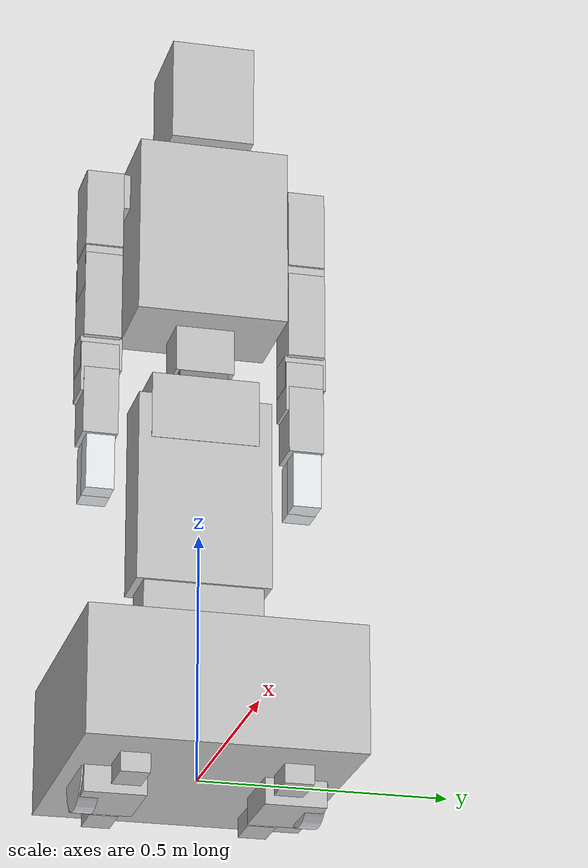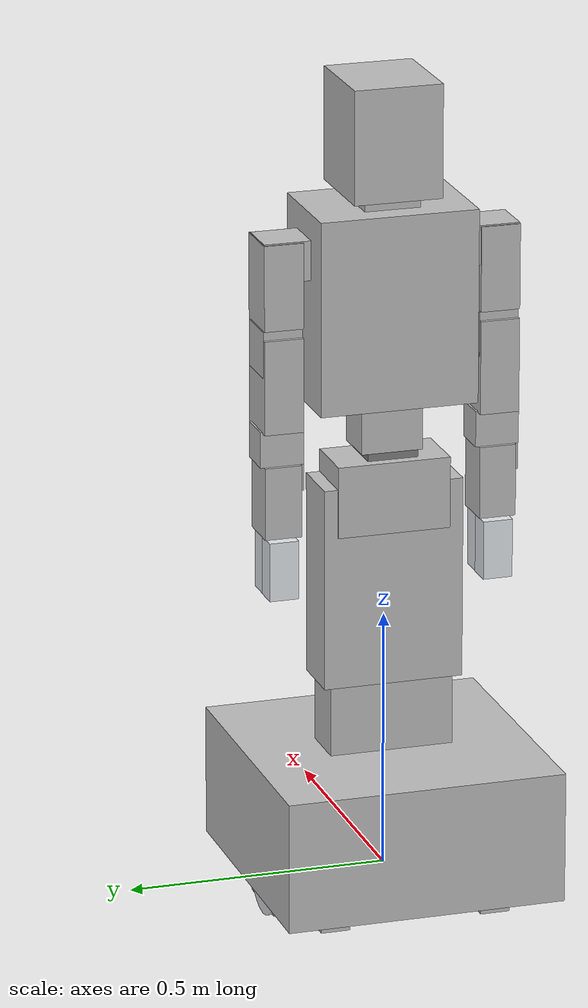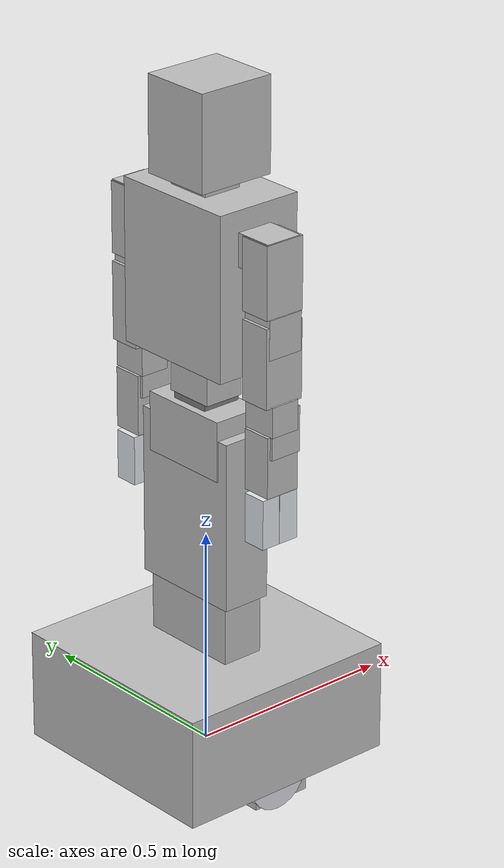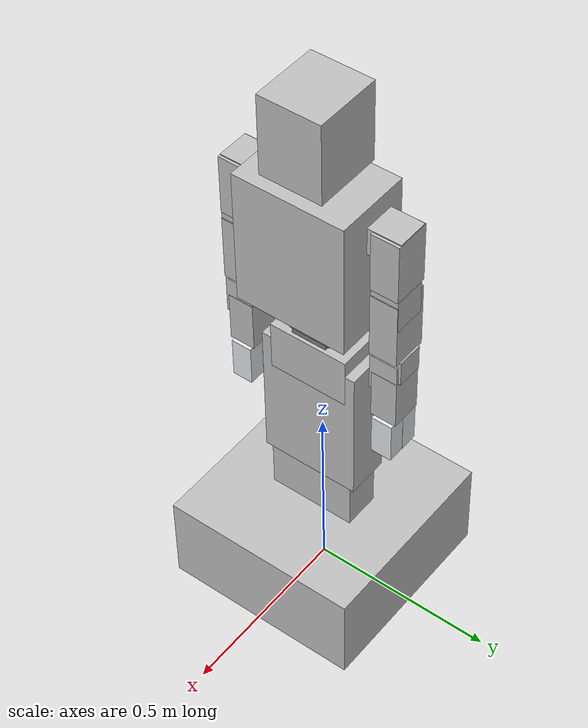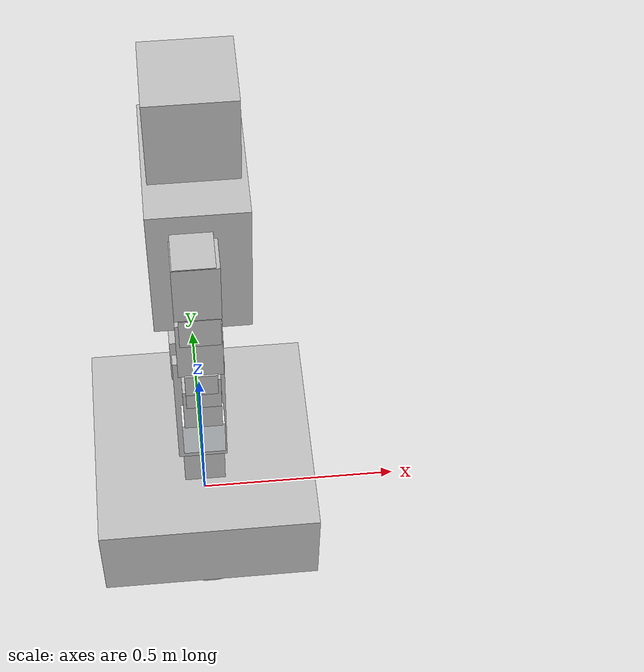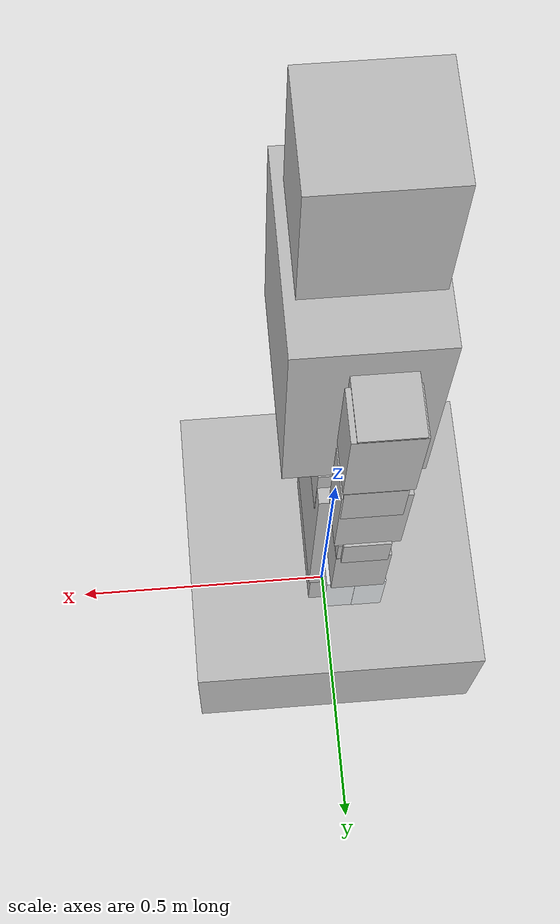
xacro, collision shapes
<?xml version="1.0" encoding="utf-8"?>
<robot xmlns:xacro="http://www.ros.org/wiki/xacro" name="HAD2503-D-DEX1">
  <link
    name="base_link">
    <inertial>
      <origin
        xyz="-0.0431384 0.0004813 0.0725755"
        rpy="0 0 0" />
      <mass
        value="23.9251683" />
      <inertia
        ixx="0.2984863"
        ixy="0.0017842"
        ixz="-0.0483947"
        iyy="0.4224088"
        iyz="0.0004353"
        izz="0.4920508" />
    </inertial>
    <visual>
      <origin
        xyz="0 0 0"
        rpy="0 0 0" />
      <geometry>
        <mesh
          filename="file://$(find gazebo_robot_had2503_demo)/meshes/base_link.STL" />
      </geometry>
      <material
        name="">
        <color
          rgba="0.752941176470588 0.752941176470588 0.752941176470588 1" />
      </material>
    </visual>
    <collision>
      <origin
        xyz="0.000000 0.000000 0.118724"
        rpy="0 0 0" />
      <geometry>
        <box size="0.543727 0.541500 0.255026" />
      </geometry>
    </collision>
  </link>
  <link
    name="front_left_fixed_wheel_link">
    <inertial>
      <origin
        xyz="-0.0046352 0.0000556 -0.0580307"
        rpy="0 0 0" />
      <mass
        value="0.7991271" />
      <inertia
        ixx="0.0011238"
        ixy="0.0000002"
        ixz="-0.0001109"
        iyy="0.0011026"
        iyz="0.0000014"
        izz="0.0005040" />
    </inertial>
    <visual>
      <origin
        xyz="0 0 0"
        rpy="0 0 0" />
      <geometry>
        <mesh
          filename="file://$(find gazebo_robot_had2503_demo)/meshes/front_left_fixed_wheel_link.STL" />
      </geometry>
      <material
        name="">
        <color
          rgba="0.752941176470588 0.752941176470588 0.752941176470588 1" />
      </material>
    </visual>
    <collision>
      <origin
        xyz="-0.009962 0.000000 -0.067460"
        rpy="0 0 0" />
      <geometry>
        <box size="0.085311 0.057000 0.128174" />
      </geometry>
    </collision>
  </link>
  <joint
    name="front_left_fixed_wheel_joint"
    type="fixed">
    <origin
      xyz="0.1475 0.1575 0.0845"
      rpy="0 0 0" />
    <parent
      link="base_link" />
    <child
      link="front_left_fixed_wheel_link" />
    <axis
      xyz="0 0 0" />
  </joint>
  <link
    name="front_right_fixed_wheel_link">
    <inertial>
      <origin
        xyz="-0.0046352 0.0000556 -0.0580307"
        rpy="0 0 0" />
      <mass
        value="0.7991271" />
      <inertia
        ixx="0.0011238"
        ixy="0.0000002"
        ixz="-0.0001109"
        iyy="0.0011026"
        iyz="0.0000014"
        izz="0.0005040" />
    </inertial>
    <visual>
      <origin
        xyz="0 0 0"
        rpy="0 0 0" />
      <geometry>
        <mesh
          filename="file://$(find gazebo_robot_had2503_demo)/meshes/front_right_fixed_wheel_link.STL" />
      </geometry>
      <material
        name="">
        <color
          rgba="0.752941176470588 0.752941176470588 0.752941176470588 1" />
      </material>
    </visual>
    <collision>
      <origin
        xyz="-0.009996 0.000000 -0.067469"
        rpy="0 0 0" />
      <geometry>
        <box size="0.085345 0.057000 0.128191" />
      </geometry>
    </collision>
  </link>
  <joint
    name="front_right_fixed_wheel_joint"
    type="fixed">
    <origin
      xyz="0.147499986661774 -0.15750001248987 0.0845000007000068"
      rpy="0 0 0" />
    <parent
      link="base_link" />
    <child
      link="front_right_fixed_wheel_link" />
    <axis
      xyz="0 0 0" />
  </joint>
  <link
    name="back_left_fixed_wheel_link">
    <inertial>
      <origin
        xyz="-0.0046352 0.0000556 -0.0580307"
        rpy="0 0 0" />
      <mass
        value="0.7991271" />
      <inertia
        ixx="0.0011238"
        ixy="0.0000002"
        ixz="-0.0001109"
        iyy="0.0011026"
        iyz="0.0000014"
        izz="0.0005040" />
    </inertial>
    <visual>
      <origin
        xyz="0 0 0"
        rpy="0 0 0" />
      <geometry>
        <mesh
          filename="file://$(find gazebo_robot_had2503_demo)/meshes/back_left_fixed_wheel_link.STL" />
      </geometry>
      <material
        name="">
        <color
          rgba="0.752941176470588 0.752941176470588 0.752941176470588 1" />
      </material>
    </visual>
    <collision>
      <origin
        xyz="-0.010028 0.000000 -0.067464"
        rpy="0 0 0" />
      <geometry>
        <box size="0.085327 0.057000 0.128182" />
      </geometry>
    </collision>
  </link>
  <joint
    name="back_left_fixed_wheel_joint"
    type="fixed">
    <origin
      xyz="-0.147499986664964 0.157500012489855 0.0845000007000353"
      rpy="0 0 0" />
    <parent
      link="base_link" />
    <child
      link="back_left_fixed_wheel_link" />
    <axis
      xyz="0 0 0" />
  </joint>
  <link
    name="back_right_fixed_wheel_link">
    <inertial>
      <origin
        xyz="-0.0046352 0.0000556 -0.0580307"
        rpy="0 0 0" />
      <mass
        value="0.7991271" />
      <inertia
        ixx="0.0011238"
        ixy="0.0000002"
        ixz="-0.0001109"
        iyy="0.0011026"
        iyz="0.0000014"
        izz="0.0005040" />
    </inertial>
    <visual>
      <origin
        xyz="0 0 0"
        rpy="0 0 0" />
      <geometry>
        <mesh
          filename="file://$(find gazebo_robot_had2503_demo)/meshes/back_right_fixed_wheel_link.STL" />
      </geometry>
      <material
        name="">
        <color
          rgba="0.752941176470588 0.752941176470588 0.752941176470588 1" />
      </material>
    </visual>
    <collision>
      <origin
        xyz="-0.009974 0.000000 -0.067465"
        rpy="0 0 0" />
      <geometry>
        <box size="0.085330 0.057000 0.128184" />
      </geometry>
    </collision>
  </link>
  <joint
    name="back_right_fixed_wheel_joint"
    type="fixed">
    <origin
      xyz="-0.147500013338228 -0.157499987510144 0.0845000007000131"
      rpy="0 0 0" />
    <parent
      link="base_link" />
    <child
      link="back_right_fixed_wheel_link" />
    <axis
      xyz="0 0 0" />
  </joint>
  <link
    name="ankle_pitch_link">
    <inertial>
      <origin
        xyz="0.0001980 0.0006990 0.1853176"
        rpy="0 0 0" />
      <mass
        value="4.1888192" />
      <inertia
        ixx="0.0517553"
        ixy="-0.0000017"
        ixz="0.0000489"
        iyy="0.0237083"
        iyz="0.0002358"
        izz="0.0326906" />
    </inertial>
    <visual>
      <origin
        xyz="0 0 0"
        rpy="0 0 0" />
      <geometry>
        <mesh
          filename="file://$(find gazebo_robot_had2503_demo)/meshes/ankle_pitch_link.STL" />
      </geometry>
      <material
        name="">
        <color
          rgba="0.752941176470588 0.752941176470588 0.752941176470588 1" />
      </material>
    </visual>
    <collision>
      <origin
        xyz="-0.000009 -0.000000 0.113251"
        rpy="0 0 0" />
      <geometry>
        <box size="0.099712 0.240379 0.308274" />
      </geometry>
    </collision>
  </link>
  <joint
    name="ankle_pitch_joint"
    type="revolute">
    <origin
      xyz="0 0 0.2035"
      rpy="0 0 0" />
    <parent
      link="base_link" />
    <child
      link="ankle_pitch_link" />
    <axis
      xyz="0 1 0" />
    <limit
      lower="-0.174"
      upper="2.09"
      effort="300"
      velocity="3.14" />
  </joint>
  <link
    name="knee_pitch_link">
    <inertial>
      <origin
        xyz="0.0020985 -0.0000198 0.1525714"
        rpy="0 0 0" />
      <mass
        value="3.0927357" />
      <inertia
        ixx="0.0617149"
        ixy="-0.0000004"
        ixz="0.0003325"
        iyy="0.0384110"
        iyz="-0.0000058"
        izz="0.0317631" />
    </inertial>
    <visual>
      <origin
        xyz="0 0 0"
        rpy="0 0 0" />
      <geometry>
        <mesh
          filename="file://$(find gazebo_robot_had2503_demo)/meshes/knee_pitch_link.STL" />
      </geometry>
      <material
        name="">
        <color
          rgba="0.752941176470588 0.752941176470588 0.752941176470588 1" />
      </material>
    </visual>
    <collision>
      <origin
        xyz="-0.002268 0.000000 0.154196"
        rpy="0 0 0" />
      <geometry>
        <box size="0.116078 0.270987 0.392722" />
      </geometry>
    </collision>
  </link>
  <joint
    name="knee_pitch_joint"
    type="revolute">
    <origin
      xyz="0 0 0.223"
      rpy="0 0 0" />
    <parent
      link="ankle_pitch_link" />
    <child
      link="knee_pitch_link" />
    <axis
      xyz="0 1 0" />
    <limit
      lower="-1.57"
      upper="0.034"
      effort="300"
      velocity="3.14" />
  </joint>
  <link
    name="hip_pitch_link">
    <inertial>
      <origin
        xyz="-0.0011036 0.0000033 0.0231592"
        rpy="0 0 0" />
      <mass
        value="4.6288698" />
      <inertia
        ixx="0.0244584"
        ixy="0.0000021"
        ixz="0.0000177"
        iyy="0.0083506"
        iyz="-0.0000007"
        izz="0.0215832" />
    </inertial>
    <visual>
      <origin
        xyz="0 0 0"
        rpy="0 0 0" />
      <geometry>
        <mesh
          filename="file://$(find gazebo_robot_had2503_demo)/meshes/hip_pitch_link.STL" />
      </geometry>
      <material
        name="">
        <color
          rgba="0.752941176470588 0.752941176470588 0.752941176470588 1" />
      </material>
    </visual>
    <collision>
      <origin
        xyz="-0.003681 0.000000 0.019587"
        rpy="0 0 0" />
      <geometry>
        <box size="0.119723 0.218500 0.138525" />
      </geometry>
    </collision>
  </link>
  <joint
    name="hip_pitch_joint"
    type="revolute">
    <origin
      xyz="0 0 0.306"
      rpy="0 0 0" />
    <parent
      link="knee_pitch_link" />
    <child
      link="hip_pitch_link" />
    <axis
      xyz="0 1 0" />
    <limit
      lower="-0.034"
      upper="1.57"
      effort="300"
      velocity="3.14" />
  </joint>
  <link
    name="waist_yaw_link">
    <inertial>
      <origin
        xyz="0.0000493 -0.0040545 0.0794762"
        rpy="0 0 0" />
      <mass
        value="0.4295846" />
      <inertia
        ixx="0.0009067"
        ixy="-0.0000001"
        ixz="0.0000007"
        iyy="0.0010086"
        iyz="0.0000270"
        izz="0.0009896" />
    </inertial>
    <visual>
      <origin
        xyz="0 0 0"
        rpy="0 0 0" />
      <geometry>
        <mesh
          filename="file://$(find gazebo_robot_had2503_demo)/meshes/waist_yaw_link.STL" />
      </geometry>
      <material
        name="">
        <color
          rgba="0.501960784313725 0.501960784313725 0.501960784313725 1" />
      </material>
    </visual>
    <collision>
      <origin
        xyz="0.000000 -0.002000 0.092499"
        rpy="0 0 0" />
      <geometry>
        <box size="0.094992 0.098800 0.106398" />
      </geometry>
    </collision>
  </link>
  <joint
    name="waist_yaw_joint"
    type="revolute">
    <origin
      xyz="0 0 0.050995"
      rpy="0 0 0" />
    <parent
      link="hip_pitch_link" />
    <child
      link="waist_yaw_link" />
    <axis
      xyz="0 0 1" />
    <limit
      lower="-2.79"
      upper="2.79"
      effort="300"
      velocity="3.14" />
  </joint>
  <link
    name="waist_pitch_link">
    <inertial>
      <origin
        xyz="0.0053530 0.0004388 0.0820859"
        rpy="0 0 0" />
      <mass
        value="1.8222971" />
      <inertia
        ixx="0.0044395"
        ixy="0.0000050"
        ixz="-0.0001413"
        iyy="0.0038908"
        iyz="0.0000017"
        izz="0.0030447" />
    </inertial>
    <visual>
      <origin
        xyz="0 0 0"
        rpy="0 0 0" />
      <geometry>
        <mesh
          filename="file://$(find gazebo_robot_had2503_demo)/meshes/waist_pitch_link.STL" />
      </geometry>
      <material
        name="">
        <color
          rgba="0.752941176470588 0.752941176470588 0.752941176470588 1" />
      </material>
    </visual>
    <collision>
      <origin
        xyz="-0.000000 0.000000 0.045750"
        rpy="0 0 0" />
      <geometry>
        <box size="0.095000 0.118750 0.181925" />
      </geometry>
    </collision>
  </link>
  <joint
    name="waist_pitch_joint"
    type="revolute">
    <origin
      xyz="0 0 0.0985"
      rpy="0 0 0" />
    <parent
      link="waist_yaw_link" />
    <child
      link="waist_pitch_link" />
    <axis
      xyz="0 1 0" />
    <limit
      lower="-0.174"
      upper="1.57"
      effort="300"
      velocity="3.14" />
  </joint>
  <link
    name="waist_roll_link">
    <inertial>
      <origin
        xyz="-0.0368928 0.0013619 0.1572855"
        rpy="0 0 0" />
      <mass
        value="3.8278766" />
      <inertia
        ixx="0.0567384"
        ixy="0.0000488"
        ixz="-0.0009411"
        iyy="0.0446877"
        iyz="0.0001667"
        izz="0.0315265" />
    </inertial>
    <visual>
      <origin
        xyz="0 0 0"
        rpy="0 0 0" />
      <geometry>
        <mesh
          filename="file://$(find gazebo_robot_had2503_demo)/meshes/waist_roll_link.STL" />
      </geometry>
      <material
        name="">
        <color
          rgba="0.752941176470588 0.752941176470588 0.752941176470588 1" />
      </material>
    </visual>
    <collision>
      <origin
        xyz="-0.023473 0.000000 0.140421"
        rpy="0 0 0" />
      <geometry>
        <box size="0.210955 0.305231 0.373981" />
      </geometry>
    </collision>
  </link>
  <joint
    name="waist_roll_joint"
    type="revolute">
    <origin
      xyz="0.0365 0 0.097"
      rpy="0 0 0" />
    <parent
      link="waist_pitch_link" />
    <child
      link="waist_roll_link" />
    <axis
      xyz="1 0 0" />
    <limit
      lower="-0.174"
      upper="0.174"
      effort="300"
      velocity="3.14" />
  </joint>
  <link
    name="right_shoulder_pitch_link">
    <inertial>
      <origin
        xyz="0.0019743 -0.1009622 -0.0000076"
        rpy="0 0 0" />
      <mass
        value="1.3449227" />
      <inertia
        ixx="0.0010453"
        ixy="0.0000037"
        ixz="-0.0000003"
        iyy="0.0011332"
        iyz="-0.0000005"
        izz="0.0011926" />
    </inertial>
    <visual>
      <origin
        xyz="0 0 0"
        rpy="0 0 0" />
      <geometry>
        <mesh
          filename="file://$(find gazebo_robot_had2503_demo)/meshes/right_shoulder_pitch_link.STL" />
      </geometry>
      <material
        name="">
        <color
          rgba="0.752941176470588 0.752941176470588 0.752941176470588 1" />
      </material>
    </visual>
    <collision>
      <origin
        xyz="-0.002750 -0.095433 0.000000"
        rpy="0 0 0" />
      <geometry>
        <box size="0.087875 0.090122 0.076000" />
      </geometry>
    </collision>
  </link>
  <joint
    name="right_shoulder_pitch_joint"
    type="revolute">
    <origin
      xyz="-0.0365 -0.107 0.2435"
      rpy="0 0 0" />
    <parent
      link="waist_roll_link" />
    <child
      link="right_shoulder_pitch_link" />
    <axis
      xyz="0 1 0" />
    <limit
      lower="-3.14"
      upper="2.61"
      effort="100"
      velocity="3.14" />
  </joint>
  <link
    name="right_shoulder_roll_link">
    <inertial>
      <origin
        xyz="0.0000297 -0.0001186 -0.0846721"
        rpy="0 0 0" />
      <mass
        value="1.4062850" />
      <inertia
        ixx="0.0020019"
        ixy="0.0000006"
        ixz="-0.0000065"
        iyy="0.0021949"
        iyz="0.0000097"
        izz="0.0012034" />
    </inertial>
    <visual>
      <origin
        xyz="0 0 0"
        rpy="0 0 0" />
      <geometry>
        <mesh
          filename="file://$(find gazebo_robot_had2503_demo)/meshes/right_shoulder_roll_link.STL" />
      </geometry>
      <material
        name="">
        <color
          rgba="0.752941176470588 0.752941176470588 0.752941176470588 1" />
      </material>
    </visual>
    <collision>
      <origin
        xyz="0.000008 0.000062 -0.046750"
        rpy="0 0 0" />
      <geometry>
        <box size="0.097835 0.076056 0.164825" />
      </geometry>
    </collision>
  </link>
  <joint
    name="right_shoulder_roll_joint"
    type="revolute">
    <origin
      xyz="0 -0.103 0"
      rpy="0 0 0" />
    <parent
      link="right_shoulder_pitch_link" />
    <child
      link="right_shoulder_roll_link" />
    <axis
      xyz="1 0 0" />
    <limit
      lower="-3.14"
      upper="0.034"
      effort="100"
      velocity="3.14" />
  </joint>
  <link
    name="right_shoulder_yaw_link">
    <inertial>
      <origin
        xyz="-0.0019517 0.0000731 -0.125117"
        rpy="0 0 0" />
      <mass
        value="1.3412482" />
      <inertia
        ixx="0.0010328"
        ixy="-0.0000009"
        ixz="-0.0000051"
        iyy="0.0011769"
        iyz="-0.0000026"
        izz="0.001127" />
    </inertial>
    <visual>
      <origin
        xyz="0 0 0"
        rpy="0 0 0" />
      <geometry>
        <mesh
          filename="file://$(find gazebo_robot_had2503_demo)/meshes/right_shoulder_yaw_link.STL" />
      </geometry>
      <material
        name="">
        <color
          rgba="0.752941176470588 0.752941176470588 0.752941176470588 1" />
      </material>
    </visual>
    <collision>
      <origin
        xyz="0.002750 0.000000 -0.119683"
        rpy="0 0 0" />
      <geometry>
        <box size="0.087875 0.076000 0.089647" />
      </geometry>
    </collision>
  </link>
  <joint
    name="right_shoulder_yaw_joint"
    type="revolute">
    <origin
      xyz="0 0 -0.056"
      rpy="0 0 0" />
    <parent
      link="right_shoulder_roll_link" />
    <child
      link="right_shoulder_yaw_link" />
    <axis
      xyz="0 0 1" />
    <limit
      lower="-2.79"
      upper="2.79"
      effort="100"
      velocity="3.14" />
  </joint>
  <link
    name="right_elbow_link">
    <inertial>
      <origin
        xyz="-0.0000298 -0.0010137 -0.0925432"
        rpy="0 0 0" />
      <mass
        value="0.7930434" />
      <inertia
        ixx="0.0015721"
        ixy="-0.0000001"
        ixz="0.0000019"
        iyy="0.0017676"
        iyz="0.0000394"
        izz="0.0005472" />
    </inertial>
    <visual>
      <origin
        xyz="0 0 0"
        rpy="0 0 0" />
      <geometry>
        <mesh
          filename="file://$(find gazebo_robot_had2503_demo)/meshes/right_elbow_link.STL" />
      </geometry>
      <material
        name="">
        <color
          rgba="0.752941176470588 0.752941176470588 0.752941176470588 1" />
      </material>
    </visual>
    <collision>
      <origin
        xyz="0.000000 -0.000012 -0.055625"
        rpy="0 0 0" />
      <geometry>
        <box size="0.097850 0.075922 0.181687" />
      </geometry>
    </collision>
  </link>
  <joint
    name="right_elbow_joint"
    type="revolute">
    <origin
      xyz="0 0 -0.127"
      rpy="0 0 0" />
    <parent
      link="right_shoulder_yaw_link" />
    <child
      link="right_elbow_link" />
    <axis
      xyz="1 0 0" />
    <limit
      lower="-1.133"
      upper="2.18"
      effort="100"
      velocity="3.14" />
  </joint>
  <link
    name="right_wrist_yaw_link">
    <inertial>
      <origin
        xyz="0.0000024 0.0018878 -0.0842795"
        rpy="0 0 0" />
      <mass
        value="0.1442517" />
      <inertia
        ixx="0.0002052"
        ixy="-0"
        ixz="-0"
        iyy="0.0001025"
        iyz="0.0000014"
        izz="0.0002108" />
    </inertial>
    <visual>
      <origin
        xyz="0 0 0"
        rpy="0 0 0" />
      <geometry>
        <mesh
          filename="file://$(find gazebo_robot_had2503_demo)/meshes/right_wrist_yaw_link.STL" />
      </geometry>
      <material
        name="">
        <color
          rgba="0.752941176470588 0.752941176470588 0.752941176470588 1" />
      </material>
    </visual>
    <collision>
      <origin
        xyz="0.000000 0.000000 -0.098200"
        rpy="0 0 0" />
      <geometry>
        <box size="0.070798 0.084550 0.069350" />
      </geometry>
    </collision>
  </link>
  <joint
    name="right_wrist_yaw_joint"
    type="revolute">
    <origin
      xyz="0 0 -0.0803"
      rpy="0 0 0" />
    <parent
      link="right_elbow_link" />
    <child
      link="right_wrist_yaw_link" />
    <axis
      xyz="0 0 1" />
    <limit
      lower="-2.79"
      upper="2.79"
      effort="100"
      velocity="3.14" />
  </joint>
  <link
    name="right_wrist_pitch_link">
    <inertial>
      <origin
        xyz="0.0017694 -0.0015401 -0.0262544"
        rpy="0 0 0" />
      <mass
        value="1.1579943" />
      <inertia
        ixx="0.0011004"
        ixy="-0.0000036"
        ixz="0.0000543"
        iyy="0.0011005"
        iyz="0.0000538"
        izz="0.0003568" />
    </inertial>
    <visual>
      <origin
        xyz="0 0 0"
        rpy="0 0 0" />
      <geometry>
        <mesh
          filename="file://$(find gazebo_robot_had2503_demo)/meshes/right_wrist_pitch_link.STL" />
      </geometry>
      <material
        name="">
        <color
          rgba="0.752941176470588 0.752941176470588 0.752941176470588 1" />
      </material>
    </visual>
    <collision>
      <origin
        xyz="0.003250 -0.003000 -0.026272"
        rpy="0 0 0" />
      <geometry>
        <box size="0.076950 0.076950 0.104900" />
      </geometry>
    </collision>
  </link>
  <joint
    name="right_wrist_pitch_joint"
    type="revolute">
    <origin
      xyz="0 0 -0.1057"
      rpy="0 0 0" />
    <parent
      link="right_wrist_yaw_link" />
    <child
      link="right_wrist_pitch_link" />
    <axis
      xyz="0 1 0" />
    <limit
      lower="-1.133"
      upper="1.133"
      effort="100"
      velocity="3.14" />
  </joint>
  <link
    name="right_wrist_roll_link">
    <inertial>
      <origin
        xyz="-0.0007632 -0.0000029 -0.0750797"
        rpy="0 0 0" />
      <mass
        value="0.6153182" />
      <inertia
        ixx="0.0009247"
        ixy="-0.0000009"
        ixz="0.00003"
        iyy="0.0010162"
        iyz="-0"
        izz="0.0004638" />
    </inertial>
    <visual>
      <origin
        xyz="0 0 0"
        rpy="0 0 0" />
      <geometry>
        <mesh
          filename="file://$(find gazebo_robot_had2503_demo)/meshes/right_wrist_roll_link.STL" />
      </geometry>
      <material
        name="">
        <color
          rgba="0.752941176470588 0.752941176470588 0.752941176470588 1" />
      </material>
    </visual>
    <collision>
      <origin
        xyz="0.000000 0.000000 -0.044779"
        rpy="0 0 0" />
      <geometry>
        <box size="0.084550 0.070853 0.140071" />
      </geometry>
    </collision>
  </link>
  <joint
    name="right_wrist_roll_joint"
    type="revolute">
    <origin
      xyz="0 0.00025 -0.0525"
      rpy="0 0 0" />
    <parent
      link="right_wrist_pitch_link" />
    <child
      link="right_wrist_roll_link" />
    <axis
      xyz="1 0 0" />
    <limit
      lower="-1.133"
      upper="1.133"
      effort="100"
      velocity="3.14" />
  </joint>
  <link
    name="right_dex1_finger_link_1">
    <inertial>
      <origin
        xyz="0.0214348 -0.0123876 -0.0387282"
        rpy="0 0 0" />
      <mass
        value="0.1313612" />
      <inertia
        ixx="0.0002045"
        ixy="0.0000072"
        ixz="0.0000191"
        iyy="0.0001769"
        iyz="-0.0000133"
        izz="0.000054" />
    </inertial>
    <visual>
      <origin
        xyz="0 0 0"
        rpy="0 0 0" />
      <geometry>
        <mesh
          filename="file://$(find gazebo_robot_had2503_demo)/meshes/right_dex1_finger_link_1.STL" />
      </geometry>
      <material
        name="">
        <color
          rgba="0.898039215686275 0.917647058823529 0.929411764705882 1" />
      </material>
    </visual>
    <collision>
      <origin
        xyz="0.006000 -0.015000 -0.055000"
        rpy="0 0 0" />
      <geometry>
        <box size="0.049400 0.057000 0.114000" />
      </geometry>
    </collision>
  </link>
  <joint
    name="right_dex1_finger_joint_1"
    type="prismatic">
    <origin
      xyz="0.017 0.01475 -0.1225"
      rpy="0 0 0" />
    <parent
      link="right_wrist_roll_link" />
    <child
      link="right_dex1_finger_link_1" />
    <axis
      xyz="1 0 0" />
    <limit
      lower="0"
      upper="0.02"
      effort="10"
      velocity="10" />
  </joint>
  <link
    name="right_dex1_finger_link_2">
    <inertial>
      <origin
        xyz="-0.0264348 0.0123876 -0.0387282"
        rpy="0 0 0" />
      <mass
        value="0.1313612" />
      <inertia
        ixx="0.0002045"
        ixy="0.0000072"
        ixz="-0.0000191"
        iyy="0.0001769"
        iyz="0.0000133"
        izz="0.000054" />
    </inertial>
    <visual>
      <origin
        xyz="0 0 0"
        rpy="0 0 0" />
      <geometry>
        <mesh
          filename="file://$(find gazebo_robot_had2503_demo)/meshes/right_dex1_finger_link_2.STL" />
      </geometry>
      <material
        name="">
        <color
          rgba="0.898039215686275 0.917647058823529 0.929411764705882 1" />
      </material>
    </visual>
    <collision>
      <origin
        xyz="-0.011000 0.015000 -0.055000"
        rpy="0 0 0" />
      <geometry>
        <box size="0.049400 0.057000 0.114000" />
      </geometry>
    </collision>
  </link>
  <joint
    name="right_dex1_finger_joint_2"
    type="prismatic">
    <origin
      xyz="-0.012 -0.01475 -0.1225"
      rpy="0 0 0" />
    <parent
      link="right_wrist_roll_link" />
    <child
      link="right_dex1_finger_link_2" />
    <axis
      xyz="1 0 0" />
    <limit
      lower="-0.02"
      upper="0"
      effort="10"
      velocity="10" />
  </joint>
  <link
    name="left_shoulder_pitch_link">
    <inertial>
      <origin
        xyz="0.0019744 0.1009649 0.0000000"
        rpy="0 0 0" />
      <mass
        value="1.3448843" />
      <inertia
        ixx="0.0010452"
        ixy="-0.0000036"
        ixz="-0.0000000"
        iyy="0.0011328"
        iyz="-0.0000004"
        izz="0.0011928" />
    </inertial>
    <visual>
      <origin
        xyz="0 0 0"
        rpy="0 0 0" />
      <geometry>
        <mesh
          filename="file://$(find gazebo_robot_had2503_demo)/meshes/left_shoulder_pitch_link.STL" />
      </geometry>
      <material
        name="">
        <color
          rgba="0.752941176470588 0.752941176470588 0.752941176470588 1" />
      </material>
    </visual>
    <collision>
      <origin
        xyz="-0.002750 0.095433 0.000000"
        rpy="0 0 0" />
      <geometry>
        <box size="0.087875 0.090122 0.076000" />
      </geometry>
    </collision>
  </link>
  <joint
    name="left_shoulder_pitch_joint"
    type="revolute">
    <origin
      xyz="-0.0365 0.107 0.2435"
      rpy="0 0 0" />
    <parent
      link="waist_roll_link" />
    <child
      link="left_shoulder_pitch_link" />
    <axis
      xyz="0 1 0" />
    <limit
      lower="-3.14"
      upper="2.61"
      effort="100"
      velocity="3.14" />
  </joint>
  <link
    name="left_shoulder_roll_link">
    <inertial>
      <origin
        xyz="0.0000696 0.0001447 -0.0848286"
        rpy="0 0 0" />
      <mass
        value="1.4037537" />
      <inertia
        ixx="0.0019833"
        ixy="0.0000003"
        ixz="-0.0000106"
        iyy="0.0021727"
        iyz="-0.0000117"
        izz="0.0011973" />
    </inertial>
    <visual>
      <origin
        xyz="0 0 0"
        rpy="0 0 0" />
      <geometry>
        <mesh
          filename="file://$(find gazebo_robot_had2503_demo)/meshes/left_shoulder_roll_link.STL" />
      </geometry>
      <material
        name="">
        <color
          rgba="0.752941176470588 0.752941176470588 0.752941176470588 1" />
      </material>
    </visual>
    <collision>
      <origin
        xyz="0.000000 -0.000016 -0.046750"
        rpy="0 0 0" />
      <geometry>
        <box size="0.097850 0.075969 0.164825" />
      </geometry>
    </collision>
  </link>
  <joint
    name="left_shoulder_roll_joint"
    type="revolute">
    <origin
      xyz="0 0.103 0"
      rpy="0 0 0" />
    <parent
      link="left_shoulder_pitch_link" />
    <child
      link="left_shoulder_roll_link" />
    <axis
      xyz="1 0 0" />
    <limit
      lower="-0.034"
      upper="3.14"
      effort="100"
      velocity="3.14" />
  </joint>
  <link
    name="left_shoulder_yaw_link">
    <inertial>
      <origin
        xyz="-0.0019382 0.0000377 -0.1251194"
        rpy="0 0 0" />
      <mass
        value="1.3412527" />
      <inertia
        ixx="0.0010322"
        ixy="0.0000002"
        ixz="-0.0000058"
        iyy="0.0011771"
        iyz="-0.0000024"
        izz="0.0011275" />
    </inertial>
    <visual>
      <origin
        xyz="0 0 0"
        rpy="0 0 0" />
      <geometry>
        <mesh
          filename="file://$(find gazebo_robot_had2503_demo)/meshes/left_shoulder_yaw_link.STL" />
      </geometry>
      <material
        name="">
        <color
          rgba="0.752941176470588 0.752941176470588 0.752941176470588 1" />
      </material>
    </visual>
    <collision>
      <origin
        xyz="0.002750 0.000000 -0.119683"
        rpy="0 0 0" />
      <geometry>
        <box size="0.087875 0.076000 0.089647" />
      </geometry>
    </collision>
  </link>
  <joint
    name="left_shoulder_yaw_joint"
    type="revolute">
    <origin
      xyz="0 0 -0.056"
      rpy="0 0 0" />
    <parent
      link="left_shoulder_roll_link" />
    <child
      link="left_shoulder_yaw_link" />
    <axis
      xyz="0 0 1" />
    <limit
      lower="-2.79"
      upper="2.79"
      effort="100"
      velocity="3.14" />
  </joint>
  <link
    name="left_elbow_link">
    <inertial>
      <origin
        xyz="-0.0000403 0.0010159 -0.0927833"
        rpy="0 0 0" />
      <mass
        value="0.7911394" />
      <inertia
        ixx="0.0015536"
        ixy="0.0000005"
        ixz="0.0000067"
        iyy="0.0017447"
        iyz="-0.0000384"
        izz="0.0005423" />
    </inertial>
    <visual>
      <origin
        xyz="0 0 0"
        rpy="0 0 0" />
      <geometry>
        <mesh
          filename="file://$(find gazebo_robot_had2503_demo)/meshes/left_elbow_link.STL" />
      </geometry>
      <material
        name="">
        <color
          rgba="0.752941176470588 0.752941176470588 0.752941176470588 1" />
      </material>
    </visual>
    <collision>
      <origin
        xyz="0.000000 0.000012 -0.055625"
        rpy="0 0 0" />
      <geometry>
        <box size="0.097850 0.075922 0.181687" />
      </geometry>
    </collision>
  </link>
  <joint
    name="left_elbow_joint"
    type="revolute">
    <origin
      xyz="0 0 -0.127"
      rpy="0 0 0" />
    <parent
      link="left_shoulder_yaw_link" />
    <child
      link="left_elbow_link" />
    <axis
      xyz="1 0 0" />
    <limit
      lower="-2.18"
      upper="1.133"
      effort="100"
      velocity="3.14" />
  </joint>
  <link
    name="left_wrist_yaw_link">
    <inertial>
      <origin
        xyz="0.0000024 0.0018878 -0.0842795"
        rpy="0 0 0" />
      <mass
        value="0.1442517" />
      <inertia
        ixx="0.0002052"
        ixy="-0"
        ixz="-0"
        iyy="0.0001025"
        iyz="0.0000014"
        izz="0.0002108" />
    </inertial>
    <visual>
      <origin
        xyz="0 0 0"
        rpy="0 0 0" />
      <geometry>
        <mesh
          filename="file://$(find gazebo_robot_had2503_demo)/meshes/left_wrist_yaw_link.STL" />
      </geometry>
      <material
        name="">
        <color
          rgba="0.752941176470588 0.752941176470588 0.752941176470588 1" />
      </material>
    </visual>
    <collision>
      <origin
        xyz="0.000000 0.000000 -0.098200"
        rpy="0 0 0" />
      <geometry>
        <box size="0.070798 0.084550 0.069350" />
      </geometry>
    </collision>
  </link>
  <joint
    name="left_wrist_yaw_joint"
    type="revolute">
    <origin
      xyz="0 0 -0.0803"
      rpy="0 0 0" />
    <parent
      link="left_elbow_link" />
    <child
      link="left_wrist_yaw_link" />
    <axis
      xyz="0 0 1" />
    <limit
      lower="-2.79"
      upper="2.79"
      effort="100"
      velocity="3.14" />
  </joint>
  <link
    name="left_wrist_pitch_link">
    <inertial>
      <origin
        xyz="0.0017694 -0.0017901 -0.0262544"
        rpy="0 0 0" />
      <mass
        value="1.1579943" />
      <inertia
        ixx="0.0011004"
        ixy="-0.0000036"
        ixz="0.0000543"
        iyy="0.0011005"
        iyz="0.0000538"
        izz="0.0003568" />
    </inertial>
    <visual>
      <origin
        xyz="0 0 0"
        rpy="0 0 0" />
      <geometry>
        <mesh
          filename="file://$(find gazebo_robot_had2503_demo)/meshes/left_wrist_pitch_link.STL" />
      </geometry>
      <material
        name="">
        <color
          rgba="0.752941176470588 0.752941176470588 0.752941176470588 1" />
      </material>
    </visual>
    <collision>
      <origin
        xyz="0.003250 -0.003250 -0.026272"
        rpy="0 0 0" />
      <geometry>
        <box size="0.076950 0.076950 0.104900" />
      </geometry>
    </collision>
  </link>
  <joint
    name="left_wrist_pitch_joint"
    type="revolute">
    <origin
      xyz="0 0 -0.1057"
      rpy="0 0 0" />
    <parent
      link="left_wrist_yaw_link" />
    <child
      link="left_wrist_pitch_link" />
    <axis
      xyz="0 1 0" />
    <limit
      lower="-1.133"
      upper="1.133"
      effort="100"
      velocity="3.14" />
  </joint>
  <link
    name="left_wrist_roll_link">
    <inertial>
      <origin
        xyz="-0.0007632 -0.0000029 -0.0750797"
        rpy="0 0 0" />
      <mass
        value="0.6153182" />
      <inertia
        ixx="0.0009247"
        ixy="-0.0000009"
        ixz="0.00003"
        iyy="0.0010162"
        iyz="-0"
        izz="0.0004638" />
    </inertial>
    <visual>
      <origin
        xyz="0 0 0"
        rpy="0 0 0" />
      <geometry>
        <mesh
          filename="file://$(find gazebo_robot_had2503_demo)/meshes/left_wrist_roll_link.STL" />
      </geometry>
      <material
        name="">
        <color
          rgba="0.752941176470588 0.752941176470588 0.752941176470588 1" />
      </material>
    </visual>
    <collision>
      <origin
        xyz="0.000000 0.000000 -0.044779"
        rpy="0 0 0" />
      <geometry>
        <box size="0.084550 0.070853 0.140071" />
      </geometry>
    </collision>
  </link>
  <joint
    name="left_wrist_roll_joint"
    type="revolute">
    <origin
      xyz="0 0 -0.0525"
      rpy="0 0 0" />
    <parent
      link="left_wrist_pitch_link" />
    <child
      link="left_wrist_roll_link" />
    <axis
      xyz="1 0 0" />
    <limit
      lower="-1.133"
      upper="1.133"
      effort="100"
      velocity="3.14" />
  </joint>
  <link
    name="left_dex1_finger_link_2">
    <inertial>
      <origin
        xyz="-0.0264348 0.0123876 -0.0387282"
        rpy="0 0 0" />
      <mass
        value="0.1313612" />
      <inertia
        ixx="0.0002045"
        ixy="0.0000072"
        ixz="-0.0000191"
        iyy="0.0001769"
        iyz="0.0000133"
        izz="0.000054" />
    </inertial>
    <visual>
      <origin
        xyz="0 0 0"
        rpy="0 0 0" />
      <geometry>
        <mesh
          filename="file://$(find gazebo_robot_had2503_demo)/meshes/left_dex1_finger_link_2.STL" />
      </geometry>
      <material
        name="">
        <color
          rgba="0.898039215686275 0.917647058823529 0.929411764705882 1" />
      </material>
    </visual>
    <collision>
      <origin
        xyz="-0.011000 0.015000 -0.055000"
        rpy="0 0 0" />
      <geometry>
        <box size="0.049400 0.057000 0.114000" />
      </geometry>
    </collision>
  </link>
  <joint
    name="left_dex1_finger_joint_2"
    type="prismatic">
    <origin
      xyz="-0.012 -0.01475 -0.1225"
      rpy="0 0 0" />
    <parent
      link="left_wrist_roll_link" />
    <child
      link="left_dex1_finger_link_2" />
    <axis
      xyz="1 0 0" />
    <limit
      lower="0"
      upper="0.02"
      effort="10"
      velocity="10" />
  </joint>
  <link
    name="left_dex1_finger_link_1">
    <inertial>
      <origin
        xyz="0.0214348 -0.0123876 -0.0387282"
        rpy="0 0 0" />
      <mass
        value="0.1313612" />
      <inertia
        ixx="0.0002045"
        ixy="0.0000072"
        ixz="0.0000191"
        iyy="0.0001769"
        iyz="-0.0000133"
        izz="0.000054" />
    </inertial>
    <visual>
      <origin
        xyz="0 0 0"
        rpy="0 0 0" />
      <geometry>
        <mesh
          filename="file://$(find gazebo_robot_had2503_demo)/meshes/left_dex1_finger_link_1.STL" />
      </geometry>
      <material
        name="">
        <color
          rgba="0.898039215686275 0.917647058823529 0.929411764705882 1" />
      </material>
    </visual>
    <collision>
      <origin
        xyz="0.006000 -0.015000 -0.055000"
        rpy="0 0 0" />
      <geometry>
        <box size="0.049400 0.057000 0.114000" />
      </geometry>
    </collision>
  </link>
  <joint
    name="left_dex1_finger_joint_1"
    type="prismatic">
    <origin
      xyz="0.017 0.01475 -0.1225"
      rpy="0 0 0" />
    <parent
      link="left_wrist_roll_link" />
    <child
      link="left_dex1_finger_link_1" />
    <axis
      xyz="1 0 0" />
    <limit
      lower="-0.02"
      upper="0"
      effort="10"
      velocity="10" />
  </joint>
  <link
    name="head_yaw_link">
    <inertial>
      <origin
        xyz="0.0036485 0.0002899 0.0895490"
        rpy="0 0 0" />
      <mass
        value="1.3146457" />
      <inertia
        ixx="0.0058334"
        ixy="0.0000002"
        ixz="-0.0002349"
        iyy="0.0057803"
        iyz="0.0000063"
        izz="0.0003991" />
    </inertial>
    <visual>
      <origin
        xyz="0 0 0"
        rpy="0 0 0" />
      <geometry>
        <mesh
          filename="file://$(find gazebo_robot_had2503_demo)/meshes/head_yaw_link.STL" />
      </geometry>
      <material
        name="">
        <color
          rgba="0.752941176470588 0.752941176470588 0.752941176470588 1" />
      </material>
    </visual>
    <collision>
      <origin
        xyz="0.000000 0.000000 0.086344"
        rpy="0 0 0" />
      <geometry>
        <box size="0.094050 0.108300 0.208346" />
      </geometry>
    </collision>
  </link>
  <joint
    name="head_yaw_joint"
    type="revolute">
    <origin
      xyz="-0.0365 0 0.2435"
      rpy="0 0 0" />
    <parent
      link="waist_roll_link" />
    <child
      link="head_yaw_link" />
    <axis
      xyz="0 0 1" />
    <limit
      lower="-1.133"
      upper="1.133"
      effort="100"
      velocity="3.14" />
  </joint>
  <link
    name="head_pitch_link">
    <inertial>
      <origin
        xyz="0.0215944 -0.0000882 0.0568572"
        rpy="0 0 0" />
      <mass
        value="1.1682334" />
      <inertia
        ixx="0.0061487"
        ixy="0.0000043"
        ixz="-0.0000500"
        iyy="0.0061257"
        iyz="-0.0000181"
        izz="0.0059560" />
    </inertial>
    <visual>
      <origin
        xyz="0 0 0"
        rpy="0 0 0" />
      <geometry>
        <mesh
          filename="file://$(find gazebo_robot_had2503_demo)/meshes/head_pitch_link.STL" />
      </geometry>
      <material
        name="">
        <color
          rgba="0.752941176470588 0.752941176470588 0.752941176470588 1" />
      </material>
    </visual>
    <collision>
      <origin
        xyz="0.006375 0.000002 0.043464"
        rpy="0 0 0" />
      <geometry>
        <box size="0.186592 0.169976 0.217884" />
      </geometry>
    </collision>
  </link>
  <joint
    name="head_pitch_joint"
    type="revolute">
    <origin
      xyz="0.005 0 0.173"
      rpy="0 0 0" />
    <parent
      link="head_yaw_link" />
    <child
      link="head_pitch_link" />
    <axis
      xyz="0 1 0" />
    <limit
      lower="-0.261"
      upper="0.436"
      effort="100"
      velocity="3.14" />
  </joint>
  <link
    name="camera_link">
    <inertial>
      <origin
        xyz="-0.1060946 0.0000407 -0.9874297"
        rpy="0 0 0" />
      <mass
        value="0.000000001" />
      <inertia
        ixx="0.000000001"
        ixy="0.000000000"
        ixz="0.000000000"
        iyy="0.000000001"
        iyz="0.000000000"
        izz="0.000000001" />
    </inertial>
  </link>
  <joint
    name="camera_joint"
    type="fixed">
    <origin
      xyz="0.087628 0 0.099703"
      rpy="0 0 0" />
    <parent
      link="head_pitch_link" />
    <child
      link="camera_link" />
    <axis
      xyz="0 0 0" />
  </joint>
  <link
    name="lidar_link">
    <inertial>
      <origin
        xyz="-0.0349868 0.0000448  -0.8165271"
        rpy="0 0 0" />
      <mass
        value="0.000000001" />
      <inertia
        ixx="0.000000001"
        ixy="0.000000000"
        ixz="0.000000000"
        iyy="0.000000001"
        iyz="0.000000000"
        izz="0.000000001" />
    </inertial>
  </link>
  <joint
    name="lidar_joint"
    type="fixed">
    <origin
      xyz="0.02152 0 0.1018"
      rpy="0 0 0" />
    <parent
      link="head_yaw_link" />
    <child
      link="lidar_link" />
    <axis
      xyz="0 0 0" />
  </joint>
  <link
    name="imu_link">
    <inertial>
      <origin
        xyz="-0.0134669 0.0000464 -0.6677269"
        rpy="0 0 0" />
      <mass
        value="0.000000001" />
      <inertia
        ixx="0.000000001"
        ixy="0.000000000"
        ixz="0.000000000"
        iyy="0.000000001"
        iyz="0.000000000"
        izz="0.000000001" />
    </inertial>
  </link>
  <joint
    name="imu_joint"
    type="fixed">
    <origin
      xyz="-0.0365 0 0.1965"
      rpy="0 0 0" />
    <parent
      link="waist_roll_link" />
    <child
      link="imu_link" />
    <axis
      xyz="0 0 0" />
  </joint>
  <link
    name="right_wheel_height_link">
    <inertial>
      <origin
        xyz="-0.0688645 -0.0221574 -0.0280054"
        rpy="0 0 0" />
      <mass
        value="2.1782703" />
      <inertia
        ixx="0.003395"
        ixy="-0.0004663"
        ixz="-0.0007576"
        iyy="0.0040681"
        iyz="-0.0004279"
        izz="0.003468" />
    </inertial>
    <visual>
      <origin
        xyz="0 0 0"
        rpy="0 0 0" />
      <geometry>
        <mesh
          filename="file://$(find gazebo_robot_had2503_demo)/meshes/right_wheel_height_link.STL" />
      </geometry>
      <material
        name="">
        <color
          rgba="0.752941176470588 0.752941176470588 0.752941176470588 1" />
      </material>
    </visual>
    <collision>
      <origin
        xyz="-0.068247 -0.010725 -0.034455"
        rpy="0 0 0" />
      <geometry>
        <box size="0.144870 0.122027 0.131964" />
      </geometry>
    </collision>
  </link>
  <joint
    name="right_wheel_height_joint"
    type="fixed">
    <origin
      xyz="0.0795 -0.16463 0.039"
      rpy="0 0 0" />
    <parent
      link="base_link" />
    <child
      link="right_wheel_height_link" />
    <axis
      xyz="0 0 1" />

  </joint>
  <link
    name="right_wheel_link">
    <inertial>
      <origin
        xyz="0 -0.0274362 0"
        rpy="0 0 0" />
      <mass
        value="1.1566061" />
      <inertia
        ixx="0.0024393"
        ixy="-0"
        ixz="-0"
        iyy="0.0045621"
        iyz="-0"
        izz="0.0024393" />
    </inertial>
    <visual>
      <origin
        xyz="0 0 0"
        rpy="0 0 0" />
      <geometry>
        <mesh
          filename="file://$(find gazebo_robot_had2503_demo)/meshes/right_wheel_link.STL" />
      </geometry>
      <material
        name="">
        <color
          rgba="0.866666666666667 0.866666666666667 0.890196078431372 1" />
      </material>
    </visual>
    <collision>
      <origin
        xyz="0.000000 -0.023800 0.000000"
        rpy="1.57079632679 0 0" />
      <geometry>
        <cylinder radius="0.077" length="0.038" />
      </geometry>
    </collision>
  </link>
  <joint
    name="right_wheel_joint"
    type="continuous">
    <origin
      xyz="-0.0795 -0.032 -0.039"
      rpy="0 0 0" />
    <parent
      link="right_wheel_height_link" />
    <child
      link="right_wheel_link" />
    <axis
      xyz="0 1 0" />
    <limit
      effort="2000"
      velocity="25" />
  </joint>
  <link
    name="left_wheel_height_link">
    <inertial>
      <origin
        xyz="-0.0688571 0.0221432 -0.0279822"
        rpy="0 0 0" />
      <mass
        value="2.1794225" />
      <inertia
        ixx="0.0033902"
        ixy="0.0004656"
        ixz="-0.0007662"
        iyy="0.0040712"
        iyz="0.0004298"
        izz="0.0034779" />
    </inertial>
    <visual>
      <origin
        xyz="0 0 0"
        rpy="0 0 0" />
      <geometry>
        <mesh
          filename="file://$(find gazebo_robot_had2503_demo)/meshes/left_wheel_height_link.STL" />
      </geometry>
      <material
        name="">
        <color
          rgba="0.752941176470588 0.752941176470588 0.752941176470588 1" />
      </material>
    </visual>
    <collision>
      <origin
        xyz="-0.068164 0.010725 -0.034483"
        rpy="0 0 0" />
      <geometry>
        <box size="0.144711 0.122028 0.132017" />
      </geometry>
    </collision>
  </link>
  <joint
    name="left_wheel_height_joint"
    type="fixed">
    <origin
      xyz="0.0795 0.16462 0.039"
      rpy="0 0 0" />
    <parent
      link="base_link" />
    <child
      link="left_wheel_height_link" />
    <axis
      xyz="0 0 1" />

  </joint>
  <link
    name="left_wheel_link">
    <inertial>
      <origin
        xyz="0 0.0281362 0"
        rpy="0 0 0" />
      <mass
        value="1.1566061" />
      <inertia
        ixx="0.0024393"
        ixy="-0"
        ixz="-0"
        iyy="0.0045621"
        iyz="-0"
        izz="0.0024393" />
    </inertial>
    <visual>
      <origin
        xyz="0 0 0"
        rpy="0 0 0" />
      <geometry>
        <mesh
          filename="file://$(find gazebo_robot_had2503_demo)/meshes/left_wheel_link.STL" />
      </geometry>
      <material
        name="">
        <color
          rgba="0.866666666666667 0.866666666666667 0.890196078431372 1" />
      </material>
    </visual>
    <collision>
      <origin
        xyz="0.000000 0.024500 0.000000"
        rpy="1.57079632679 0 0" />
      <geometry>
        <cylinder radius="0.077" length="0.038" />
      </geometry>
    </collision>
  </link>
  <joint
    name="left_wheel_joint"
    type="continuous">
    <origin
      xyz="-0.0795 0.032 -0.039"
      rpy="0 0 0" />
    <parent
      link="left_wheel_height_link" />
    <child
      link="left_wheel_link" />
    <axis
      xyz="0 1 0" />
    <limit
      effort="2000"
      velocity="25" />
  </joint>
  <link
    name="base_imu_link">
    <inertial>
      <origin
        xyz="-0.0431384 0.0004813 0.0080755"
        rpy="0 0 0" />
      <mass
        value="0.000000001" />
      <inertia
        ixx="0.000000001"
        ixy="0.000000000"
        ixz="0.000000000"
        iyy="0.000000001"
        iyz="0.000000000"
        izz="0.000000001" />
    </inertial>
  </link>
  <joint
    name="base_imu_joint"
    type="fixed">
    <origin
      xyz="0 0 0.0645"
      rpy="0 0 0" />
    <parent
      link="base_link" />
    <child
      link="base_imu_link" />
    <axis
      xyz="0 0 0" />
  </joint>
</robot>
